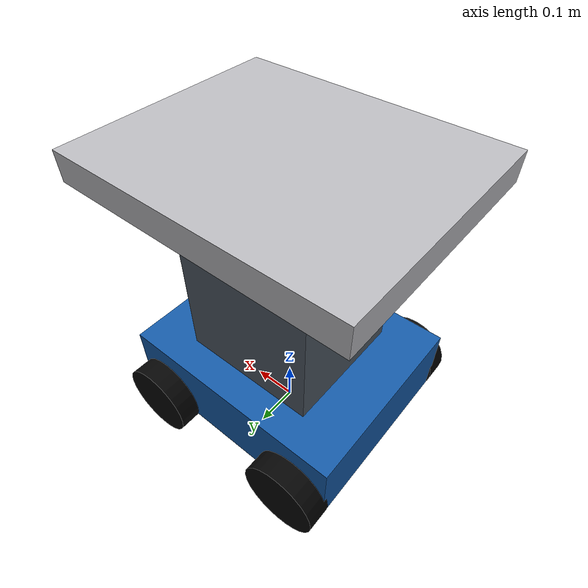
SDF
<?xml version="1.0"?>
<sdf version="1.9">
  <model name="mobile_pick_station">
    <static>true</static>
    <pose>0 0 0 0 0 0</pose>
    <link name="platform">
      <collision name="base_collision"><pose>0 0 0.14 0 0 0</pose><geometry><box><size>0.52 0.42 0.16</size></box></geometry></collision>
      <visual name="base_visual"><pose>0 0 0.14 0 0 0</pose><geometry><box><size>0.52 0.42 0.16</size></box></geometry><material><ambient>0.05 0.18 0.32 1</ambient><diffuse>0.08 0.35 0.65 1</diffuse></material></visual>
      <collision name="column_collision"><pose>0 0 0.42 0 0 0</pose><geometry><box><size>0.30 0.28 0.40</size></box></geometry></collision>
      <visual name="column_visual"><pose>0 0 0.42 0 0 0</pose><geometry><box><size>0.30 0.28 0.40</size></box></geometry><material><ambient>0.18 0.20 0.22 1</ambient><diffuse>0.30 0.34 0.38 1</diffuse></material></visual>
      <collision name="top_collision"><pose>0 0 0.65 0 0 0</pose><geometry><box><size>0.58 0.48 0.06</size></box></geometry></collision>
      <visual name="top_visual"><pose>0 0 0.65 0 0 0</pose><geometry><box><size>0.58 0.48 0.06</size></box></geometry><material><ambient>0.5 0.5 0.52 1</ambient><diffuse>0.72 0.72 0.74 1</diffuse></material></visual>
      <visual name="wheel_fl"><pose>0.18 0.23 0.09 1.5708 0 0</pose><geometry><cylinder><radius>0.085</radius><length>0.055</length></cylinder></geometry><material><ambient>0.02 0.02 0.02 1</ambient></material></visual>
      <visual name="wheel_fr"><pose>0.18 -0.23 0.09 1.5708 0 0</pose><geometry><cylinder><radius>0.085</radius><length>0.055</length></cylinder></geometry><material><ambient>0.02 0.02 0.02 1</ambient></material></visual>
      <visual name="wheel_rl"><pose>-0.18 0.23 0.09 1.5708 0 0</pose><geometry><cylinder><radius>0.085</radius><length>0.055</length></cylinder></geometry><material><ambient>0.02 0.02 0.02 1</ambient></material></visual>
      <visual name="wheel_rr"><pose>-0.18 -0.23 0.09 1.5708 0 0</pose><geometry><cylinder><radius>0.085</radius><length>0.055</length></cylinder></geometry><material><ambient>0.02 0.02 0.02 1</ambient></material></visual>
    </link>
  </model>
</sdf>
